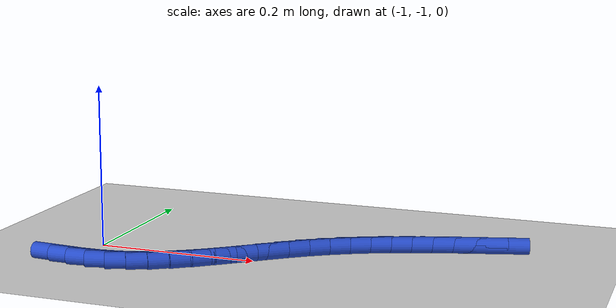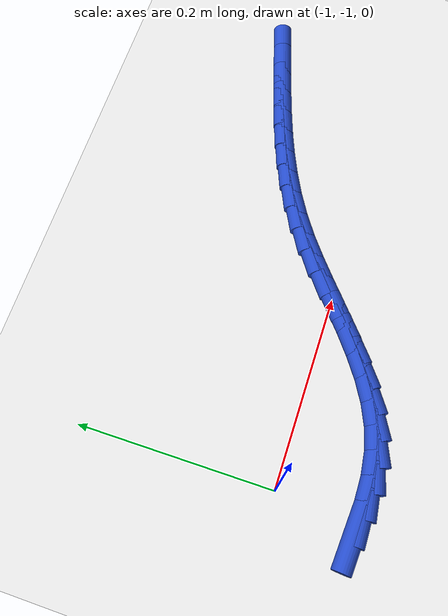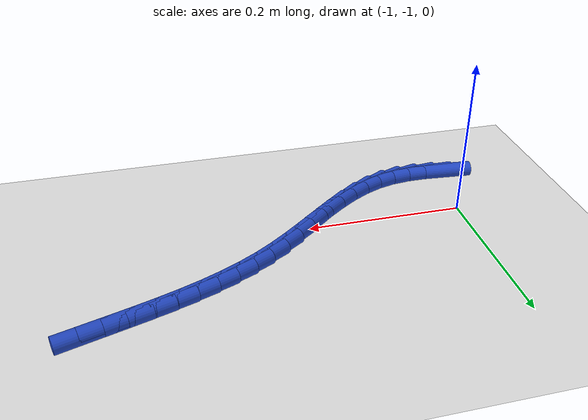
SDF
<sdf version="1.6">
 <world name="default">
  <model name="ground_plane">
   <static>1</static>
   <link name="link">
    <collision name="collision">
     <geometry><plane><normal>0 0 1</normal><size>100 100</size></plane></geometry>
     <surface><friction><ode><mu>100</mu><mu2>50</mu2></ode></friction></surface>
    </collision>
    <visual name="visual">
     <cast_shadows>0</cast_shadows>
     <geometry><plane><normal>0 0 1</normal><size>100 100</size></plane></geometry>
     <material>
      <script><uri>file://media/materials/scripts/gazebo.material</uri><name>Gazebo/WhiteGlow</name></script>
     </material>
    </visual>
   </link>
  </model>
  <model name="line">
   <link name="link_196">
    <pose>-1.0107336250294565 -1.0796255171675881 0.01 0 1.57 -0.0791195161147893</pose>
    <collision name="collision">
     <geometry><cylinder><radius>0.01</radius><length>0.08</length></cylinder></geometry>
    </collision>
    <visual name="visual">
     <material>
      <script><name>Gazebo/Blue</name><uri>file://media/materials/scripts/gazebo.material</uri></script>
     </material>
     <geometry><cylinder><radius>0.01</radius><length>0.08</length></cylinder></geometry>
    </visual>
   </link>
   <link name="link_197">
    <pose>-0.9854719774153344 -1.0816283875027892 0.01 0 1.57 0.005694821629559774</pose>
    <collision name="collision">
     <geometry><cylinder><radius>0.01</radius><length>0.08</length></cylinder></geometry>
    </collision>
    <visual name="visual">
     <material>
      <script><name>Gazebo/Blue</name><uri>file://media/materials/scripts/gazebo.material</uri></script>
     </material>
     <geometry><cylinder><radius>0.01</radius><length>0.08</length></cylinder></geometry>
    </visual>
   </link>
   <link name="link_198">
    <pose>-0.9608147092603508 -1.0814879672407816 0.01 0 1.57 0.11796901014135971</pose>
    <collision name="collision">
     <geometry><cylinder><radius>0.01</radius><length>0.08</length></cylinder></geometry>
    </collision>
    <visual name="visual">
     <material>
      <script><name>Gazebo/Blue</name><uri>file://media/materials/scripts/gazebo.material</uri></script>
     </material>
     <geometry><cylinder><radius>0.01</radius><length>0.08</length></cylinder></geometry>
    </visual>
   </link>
   <link name="link_199">
    <pose>-0.9369069470809794 -1.078654435532147 0.01 0 1.57 0.2574231702542826</pose>
    <collision name="collision">
     <geometry><cylinder><radius>0.01</radius><length>0.08</length></cylinder></geometry>
    </collision>
    <visual name="visual">
     <material>
      <script><name>Gazebo/Blue</name><uri>file://media/materials/scripts/gazebo.material</uri></script>
     </material>
     <geometry><cylinder><radius>0.01</radius><length>0.08</length></cylinder></geometry>
    </visual>
   </link>
   <link name="link_200">
    <pose>-0.9138890526274955 -1.0725946470358052 0.01 0 1.57 0.3983058996284416</pose>
    <collision name="collision">
     <geometry><cylinder><radius>0.01</radius><length>0.08</length></cylinder></geometry>
    </collision>
    <visual name="visual">
     <material>
      <script><name>Gazebo/Blue</name><uri>file://media/materials/scripts/gazebo.material</uri></script>
     </material>
     <geometry><cylinder><radius>0.01</radius><length>0.08</length></cylinder></geometry>
    </visual>
   </link>
   <link name="link_201">
    <pose>-0.8917568081498943 -1.0632814490577558 0.01 0 1.57 0.511005379368355</pose>
    <collision name="collision">
     <geometry><cylinder><radius>0.01</radius><length>0.08</length></cylinder></geometry>
    </collision>
    <visual name="visual">
     <material>
      <script><name>Gazebo/Blue</name><uri>file://media/materials/scripts/gazebo.material</uri></script>
     </material>
     <geometry><cylinder><radius>0.01</radius><length>0.08</length></cylinder></geometry>
    </visual>
   </link>
   <link name="link_202">
    <pose>-0.8703388050115529 -1.0512728158350242 0.01 0 1.57 0.5942908514540922</pose>
    <collision name="collision">
     <geometry><cylinder><radius>0.01</radius><length>0.08</length></cylinder></geometry>
    </collision>
    <visual name="visual">
     <material>
      <script><name>Gazebo/Blue</name><uri>file://media/materials/scripts/gazebo.material</uri></script>
     </material>
     <geometry><cylinder><radius>0.01</radius><length>0.08</length></cylinder></geometry>
    </visual>
   </link>
   <link name="link_203">
    <pose>-0.849454317579322 -1.037159328798086 0.01 0 1.57 0.6506007889314016</pose>
    <collision name="collision">
     <geometry><cylinder><radius>0.01</radius><length>0.08</length></cylinder></geometry>
    </collision>
    <visual name="visual">
     <material>
      <script><name>Gazebo/Blue</name><uri>file://media/materials/scripts/gazebo.material</uri></script>
     </material>
     <geometry><cylinder><radius>0.01</radius><length>0.08</length></cylinder></geometry>
    </visual>
   </link>
   <link name="link_204">
    <pose>-0.8289226202200529 -1.021531569377418 0.01 0 1.57 0.6825901206709232</pose>
    <collision name="collision">
     <geometry><cylinder><radius>0.01</radius><length>0.08</length></cylinder></geometry>
    </collision>
    <visual name="visual">
     <material>
      <script><name>Gazebo/Blue</name><uri>file://media/materials/scripts/gazebo.material</uri></script>
     </material>
     <geometry><cylinder><radius>0.01</radius><length>0.08</length></cylinder></geometry>
    </visual>
   </link>
   <link name="link_205">
    <pose>-0.808562987300598 -1.0049801190034975 0.01 0 1.57 0.6921534464705129</pose>
    <collision name="collision">
     <geometry><cylinder><radius>0.01</radius><length>0.08</length></cylinder></geometry>
    </collision>
    <visual name="visual">
     <material>
      <script><name>Gazebo/Blue</name><uri>file://media/materials/scripts/gazebo.material</uri></script>
     </material>
     <geometry><cylinder><radius>0.01</radius><length>0.08</length></cylinder></geometry>
    </visual>
   </link>
   <link name="link_206">
    <pose>-0.7881946931878074 -0.9880955591068 0.01 0 1.57 0.6800848578049149</pose>
    <collision name="collision">
     <geometry><cylinder><radius>0.01</radius><length>0.08</length></cylinder></geometry>
    </collision>
    <visual name="visual">
     <material>
      <script><name>Gazebo/Blue</name><uri>file://media/materials/scripts/gazebo.material</uri></script>
     </material>
     <geometry><cylinder><radius>0.01</radius><length>0.08</length></cylinder></geometry>
    </visual>
   </link>
   <link name="link_207">
    <pose>-0.7676370122485333 -0.9714684711178029 0.01 0 1.57 0.646040308068787</pose>
    <collision name="collision">
     <geometry><cylinder><radius>0.01</radius><length>0.08</length></cylinder></geometry>
    </collision>
    <visual name="visual">
     <material>
      <script><name>Gazebo/Blue</name><uri>file://media/materials/scripts/gazebo.material</uri></script>
     </material>
     <geometry><cylinder><radius>0.01</radius><length>0.08</length></cylinder></geometry>
    </visual>
   </link>
   <link name="link_208">
    <pose>-0.7467092188496263 -0.9556894364669818 0.01 0 1.57 0.5894807394648265</pose>
    <collision name="collision">
     <geometry><cylinder><radius>0.01</radius><length>0.08</length></cylinder></geometry>
    </collision>
    <visual name="visual">
     <material>
      <script><name>Gazebo/Blue</name><uri>file://media/materials/scripts/gazebo.material</uri></script>
     </material>
     <geometry><cylinder><radius>0.01</radius><length>0.08</length></cylinder></geometry>
    </visual>
   </link>
   <link name="link_209">
    <pose>-0.7252366908705269 -0.9413285268818116 0.01 0 1.57 0.5245786384231839</pose>
    <collision name="collision">
     <geometry><cylinder><radius>0.01</radius><length>0.08</length></cylinder></geometry>
    </collision>
    <visual name="visual">
     <material>
      <script><name>Gazebo/Blue</name><uri>file://media/materials/scripts/gazebo.material</uri></script>
     </material>
     <geometry><cylinder><radius>0.01</radius><length>0.08</length></cylinder></geometry>
    </visual>
   </link>
   <link name="link_210">
    <pose>-0.7031638189503487 -0.928555894155325 0.01 0 1.57 0.4660350329324741</pose>
    <collision name="collision">
     <geometry><cylinder><radius>0.01</radius><length>0.08</length></cylinder></geometry>
    </collision>
    <visual name="visual">
     <material>
      <script><name>Gazebo/Blue</name><uri>file://media/materials/scripts/gazebo.material</uri></script>
     </material>
     <geometry><cylinder><radius>0.01</radius><length>0.08</length></cylinder></geometry>
    </visual>
   </link>
   <link name="link_211">
    <pose>-0.6805432221823853 -0.9171780087709309 0.01 0 1.57 0.41525822510896065</pose>
    <collision name="collision">
     <geometry><cylinder><radius>0.01</radius><length>0.08</length></cylinder></geometry>
    </collision>
    <visual name="visual">
     <material>
      <script><name>Gazebo/Blue</name><uri>file://media/materials/scripts/gazebo.material</uri></script>
     </material>
     <geometry><cylinder><radius>0.01</radius><length>0.08</length></cylinder></geometry>
    </visual>
   </link>
   <link name="link_212">
    <pose>-0.6574314602092369 -0.9069880997392343 0.01 0 1.57 0.37280015766354785</pose>
    <collision name="collision">
     <geometry><cylinder><radius>0.01</radius><length>0.08</length></cylinder></geometry>
    </collision>
    <visual name="visual">
     <material>
      <script><name>Gazebo/Blue</name><uri>file://media/materials/scripts/gazebo.material</uri></script>
     </material>
     <geometry><cylinder><radius>0.01</radius><length>0.08</length></cylinder></geometry>
    </visual>
   </link>
   <link name="link_213">
    <pose>-0.633885092673503 -0.8977793960708395 0.01 0 1.57 0.33893421663630297</pose>
    <collision name="collision">
     <geometry><cylinder><radius>0.01</radius><length>0.08</length></cylinder></geometry>
    </collision>
    <visual name="visual">
     <material>
      <script><name>Gazebo/Blue</name><uri>file://media/materials/scripts/gazebo.material</uri></script>
     </material>
     <geometry><cylinder><radius>0.01</radius><length>0.08</length></cylinder></geometry>
    </visual>
   </link>
   <link name="link_214">
    <pose>-0.609960679217786 -0.8893451267763522 0.01 0 1.57 0.3137352484354478</pose>
    <collision name="collision">
     <geometry><cylinder><radius>0.01</radius><length>0.08</length></cylinder></geometry>
    </collision>
    <visual name="visual">
     <material>
      <script><name>Gazebo/Blue</name><uri>file://media/materials/scripts/gazebo.material</uri></script>
     </material>
     <geometry><cylinder><radius>0.01</radius><length>0.08</length></cylinder></geometry>
    </visual>
   </link>
   <link name="link_215">
    <pose>-0.5857147794846846 -0.8814785208663763 0.01 0 1.57 0.29715371086426423</pose>
    <collision name="collision">
     <geometry><cylinder><radius>0.01</radius><length>0.08</length></cylinder></geometry>
    </collision>
    <visual name="visual">
     <material>
      <script><name>Gazebo/Blue</name><uri>file://media/materials/scripts/gazebo.material</uri></script>
     </material>
     <geometry><cylinder><radius>0.01</radius><length>0.08</length></cylinder></geometry>
    </visual>
   </link>
   <link name="link_216">
    <pose>-0.5612039531167999 -0.8739728073515173 0.01 0 1.57 0.2890736352770134</pose>
    <collision name="collision">
     <geometry><cylinder><radius>0.01</radius><length>0.08</length></cylinder></geometry>
    </collision>
    <visual name="visual">
     <material>
      <script><name>Gazebo/Blue</name><uri>file://media/materials/scripts/gazebo.material</uri></script>
     </material>
     <geometry><cylinder><radius>0.01</radius><length>0.08</length></cylinder></geometry>
    </visual>
   </link>
   <link name="link_217">
    <pose>-0.5364847597567323 -0.8666212152423791 0.01 0 1.57 0.2892843037802199</pose>
    <collision name="collision">
     <geometry><cylinder><radius>0.01</radius><length>0.08</length></cylinder></geometry>
    </collision>
    <visual name="visual">
     <material>
      <script><name>Gazebo/Blue</name><uri>file://media/materials/scripts/gazebo.material</uri></script>
     </material>
     <geometry><cylinder><radius>0.01</radius><length>0.08</length></cylinder></geometry>
    </visual>
   </link>
  </model>
 </world>
</sdf>
